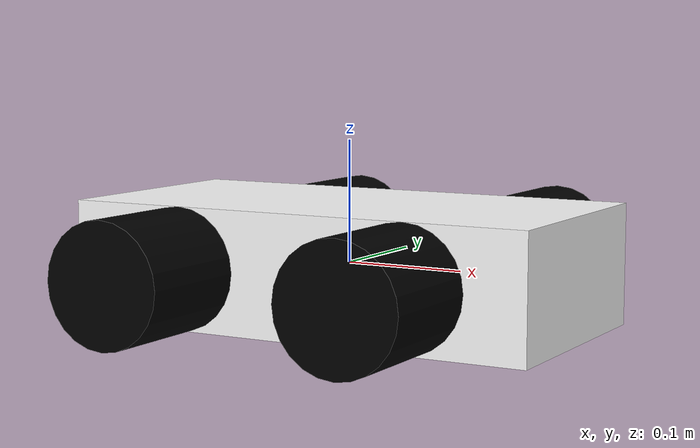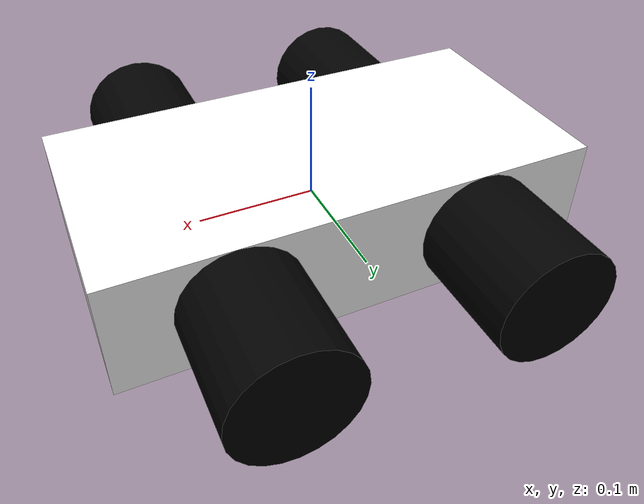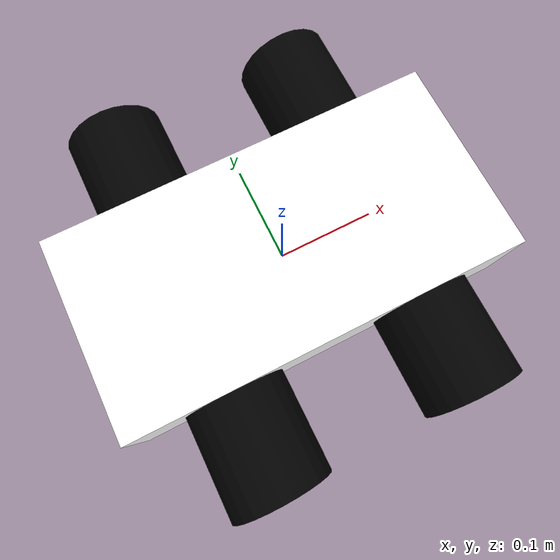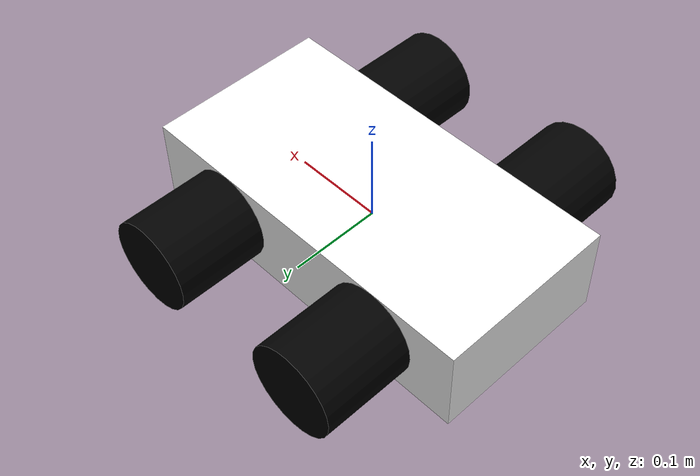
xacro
<?xml version="1.0"?>
<robot name="simple_bot">

 <material name="black">
   <color rgba="0 0 0 1"/>
  </material>
  <material name="white">
    <color rgba="1 1 1 1"/>
  </material>

<link name="body">
    <visual>
      <geometry>
        <box size="0.4 0.2 0.1"/>
      </geometry>
      <material name="white"/>
    </visual>
    <collision>
      <geometry>
        <box size="0.4 0.2 0.1"/>
      </geometry>
    </collision>
    <inertial>
      <mass value="10"/>
      <inertia ixx="0.4" ixy="0.0" ixz="0.0" iyy="0.4" iyz="0.0" izz="0.2"/>
    </inertial>
  </link>

  <gazebo reference="base_link">
      <material>Gazebo/White</material>
  </gazebo>

<link name="right_front_wheel">
  <!--origin xyz="0.1 -0.13 0.1" rpy="0 1.5707 1.5707"/-->
    <visual>
      <origin rpy="0 1.5707 1.5707" xyz="0 0 0"/>
      <geometry>
        <cylinder length="0.1" radius="0.05"/>
      </geometry>
      <material name="black"/>
    </visual>
     <collision>
      <origin rpy="0 1.5707 1.5707" xyz="0 0 0"/>
      <geometry>
        <cylinder length="0.1" radius="0.05"/>
      </geometry>
      <material name="black"/>
    </collision>
     <inertial>
      <origin xyz="0 0 0" rpy="0 1.5707 1.5707"/>
      <mass value="5"/>
      <inertia
        ixx="1.0" ixy="0.0" ixz="0.0"
        iyy="1.0" iyz="0.0"
        izz="1.0"/>
    </inertial>
  </link>

  <gazebo reference="right_front_wheel">
      <material>Gazebo/Black</material>
  </gazebo>

<joint name="right_front_wheel_joint" type="continuous">
    <parent link="body"/>
    <child link="right_front_wheel"/>
    <origin rpy="0 0 0" xyz="0.1 -0.15 0"/>
    <axis xyz="0 1 0" rpy="0 0 0"/>
    <limit effort="100" velocity="100"/>
    <joint_properties damping="1.0" friction="1.0"/>
  </joint>

<link name="left_front_wheel">
  <!--origin xyz="0.1 0.13 0.1" rpy="0 1.5707 1.5707"/-->
    <visual>
      <origin rpy="0 1.5707 1.5707" xyz="0 0 0"/>
      <geometry>
        <cylinder length="0.1" radius="0.05"/>
      </geometry>
      <material name="black"/>
    </visual>
     <collision>
      <origin rpy="0 1.5707 1.5707" xyz="0 0 0"/>
      <geometry>
        <cylinder length="0.1" radius="0.05"/>
      </geometry>
      <material name="black"/>
    </collision>
     <inertial>
      <origin xyz="0 0 0" rpy="0 1.5707 1.5707"/>
      <mass value="5"/>
      <inertia
        ixx="1.0" ixy="0.0" ixz="0.0"
        iyy="1.0" iyz="0.0"
        izz="1.0"/>
    </inertial>
  </link>

  <gazebo reference="left_front_wheel">
      <material>Gazebo/Black</material>
  </gazebo>

<joint name="left_front_wheel_joint" type="continuous">
    <parent link="body"/>
    <child link="left_front_wheel"/>
    <origin rpy="0 0 0" xyz="0.1 0.15 0"/>
    <axis xyz="0 1 0" rpy="0 0 0"/>
    <limit effort="100" velocity="100"/>
    <joint_properties damping="1.0" friction="1.0"/>
  </joint>

<link name="right_rear_wheel">
  <!--origin xyz="-0.1 -0.13 0.1" rpy="0 1.5707 1.5707"/-->
    <visual>
      <origin rpy="0 1.5707 1.5707" xyz="0 0 0"/>
      <geometry>
        <cylinder length="0.1" radius="0.05"/>
      </geometry>
      <material name="black"/>
    </visual>
     <collision>
      <origin rpy="0 1.5707 1.5707" xyz="0 0 0"/>
      <geometry>
        <cylinder length="0.1" radius="0.05"/>
      </geometry>
      <material name="black"/>
    </collision>
     <inertial>
      <origin xyz="0 0 0" rpy="0 1.5707 1.5707"/>
      <mass value="5"/>
      <inertia
        ixx="1.0" ixy="0.0" ixz="0.0"
        iyy="1.0" iyz="0.0"
        izz="1.0"/>
    </inertial>
  </link>

  <gazebo reference="right_rear_wheel">
      <material>Gazebo/Black</material>
  </gazebo>

<joint name="right_rear_wheel_joint" type="continuous">
    <parent link="body"/>
    <child link="right_rear_wheel"/>
    <origin rpy="0 0 0" xyz="-0.1 -0.15 0"/>
    <axis xyz="0 1 0" rpy="0 0 0"/>
    <limit effort="100" velocity="100"/>
    <joint_properties damping="1.0" friction="1.0"/>
  </joint>

<link name="left_rear_wheel">
  <!--origin xyz="-0.1 0.13 0.1" rpy="0 1.5707 1.5707"/-->
    <visual>
      <origin rpy="0 1.5707 1.5707" xyz="0 0 0"/>
      <geometry>
        <cylinder length="0.1" radius="0.05"/>
      </geometry>
      <material name="black"/>
    </visual>
     <collision>
      <origin rpy="0 1.5707 1.5707" xyz="0 0 0"/>
      <geometry>
        <cylinder length="0.1" radius="0.05"/>
      </geometry>
      <material name="black"/>
    </collision>
     <inertial>
      <origin xyz="0 0 0" rpy="0 1.5707 1.5707"/>
      <mass value="5"/>
      <inertia
        ixx="1.0" ixy="0.0" ixz="0.0"
        iyy="1.0" iyz="0.0"
        izz="1.0"/>
    </inertial>
  </link>

  <gazebo reference="left_rear_wheel">
      <material>Gazebo/Black</material>
  </gazebo>

<joint name="left_rear_wheel_joint" type="continuous">
    <parent link="body"/>
    <child link="left_rear_wheel"/>
    <origin rpy="0 0 0" xyz="-0.1 0.15 0"/>
    <axis xyz="0 1 0" rpy="0 0 0"/>
    <limit effort="100" velocity="100"/>
    <joint_properties damping="1.0" friction="1.0"/>
  </joint>

  <gazebo>
    <plugin name="differential_drive_controller" filename="libgazebo_ros_diff_drive.so">
      <legacyMode>false</legacyMode>
      <alwaysOn>true</alwaysOn>
      <updateRate>20</updateRate>
      <leftFrontJoint>left_front_wheel_joint</leftFrontJoint>
      <rightFrontJoint>right_front_wheel_joint</rightFrontJoint>
      <leftRearJoint>left_rear_wheel_joint</leftRearJoint>
      <rightRearJoint>right_rear_wheel_joint</rightRearJoint>
      <wheelSeparation>0.4</wheelSeparation>
      <wheelDiameter>0.1</wheelDiameter>
      <torque>20</torque>
      <commandTopic>cmd_vel</commandTopic>
      <odometryTopic>odom</odometryTopic>
      <odometryFrame>odom</odometryFrame>
      <robotBaseFrame>body</robotBaseFrame>
    </plugin>
  </gazebo>

  <gazebo reference="body">
    </gazebo>

</robot>
